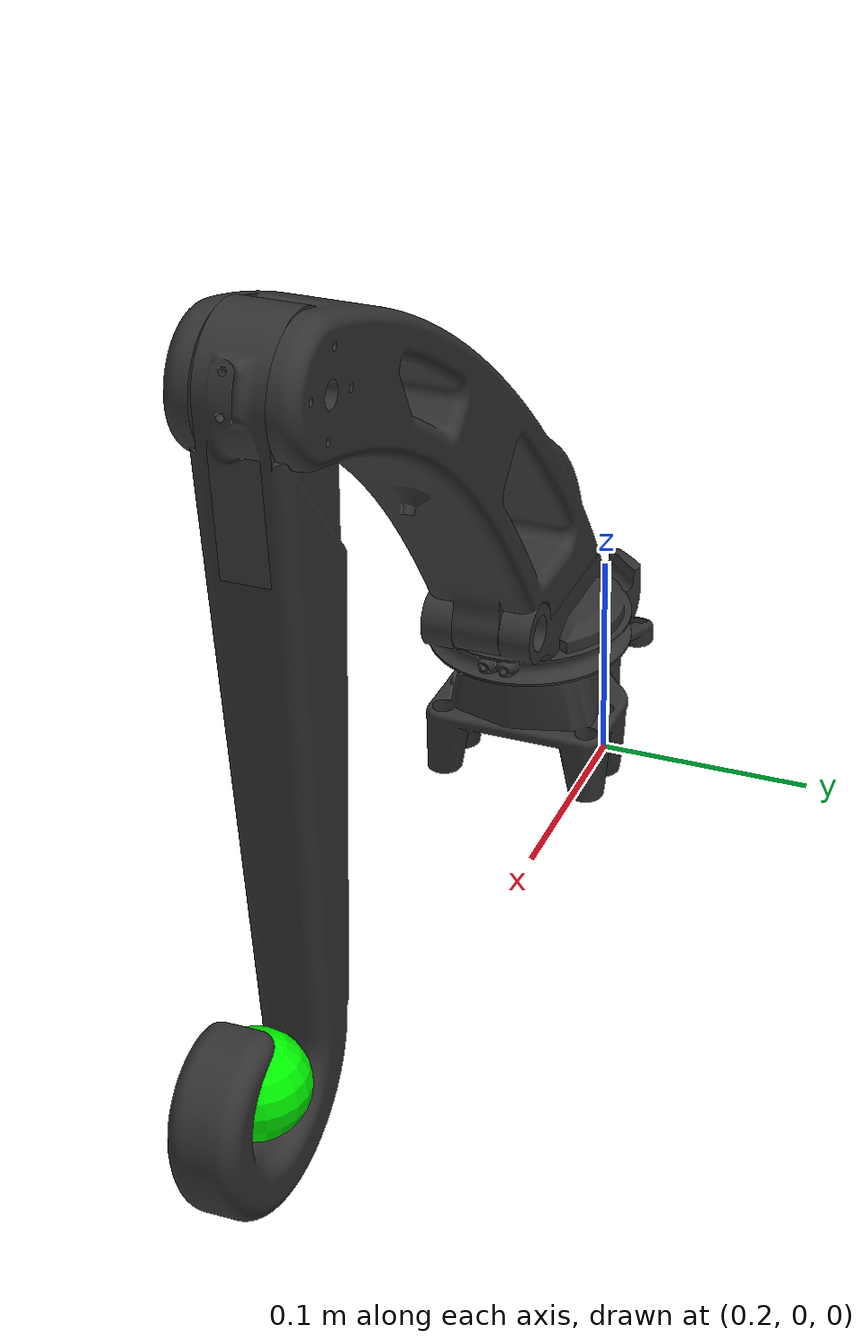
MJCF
<mujoco model="aliengo_description">
    <compiler angle="radian" meshdir="./assets/" autolimits="true"/>
    <option cone="elliptic" impratio="100" />
    <size njmax="500" nconmax="100" />
    <option gravity='0 0 -9.806' timestep='0.002'/>

    <default>
        <geom contype="1" conaffinity="1" friction="0.8 0.02 0.01" rgba="0.5 0.6 0.7 1" margin="0.001" group="0"/>

        <light castshadow="false" diffuse="1 1 1"/>
        <motor ctrlrange="-44.4 44.4" ctrllimited="true"/>
        <camera fovy="60"/>
        <joint damping="3" armature="0.01" frictionloss="0.2" />

    </default>
    <!-- No rename the assests these are the mesh files-->
    <asset>
        <mesh name="follower/trunk" file="trunk.stl" />
        <mesh name="follower/hip" file="hip.stl" />
        <mesh name="follower/thigh_mirror" file="thigh_mirror.stl" />
        <mesh name="follower/calf" file="calf.stl" />
        <mesh name="follower/thigh" file="thigh.stl" />
        <mesh name="follower/base_arm_link" file="base_arm_link.stl" />
        <mesh name="follower/arm_link_1" file="arm_link_1.stl" />
        <mesh name="follower/arm_link_2" file="arm_link_2.stl" />
        <mesh name="follower/arm_link_3" file="arm_link_3.stl" />
        <mesh name="leader/trunk" file="trunk.stl" />
        <mesh name="leader/hip" file="hip.stl" />
        <mesh name="leader/thigh_mirror" file="thigh_mirror.stl" />
        <mesh name="leader/calf" file="calf.stl" />
        <mesh name="leader/thigh" file="thigh.stl" />
        <mesh name="leader/base_arm_link" file="base_arm_link.stl" />
        <mesh name="leader/arm_link_1" file="arm_link_1.stl" />
        <mesh name="leader/arm_link_2" file="arm_link_2.stl" />
        <mesh name="leader/arm_link_3" file="arm_link_3.stl" />
    </asset>

    <visual>
      <headlight diffuse="0.6 0.6 0.6" ambient="0.3 0.3 0.3" specular="0 0 0"/>
      <rgba haze="0.15 0.25 0.35 1"/>
      <global azimuth="-130" elevation="-20"/>
    </visual>

    <asset>
      <texture type="skybox" builtin="gradient" rgb1="0.3 0.5 0.7" rgb2="0 0 0" width="512" height="3072"/>
      <texture type="2d" name="groundplane" builtin="checker" mark="edge" rgb1="0.2 0.3 0.4" rgb2="0.1 0.2 0.3"
        markrgb="0.8 0.8 0.8" width="300" height="300"/>
      <material name="groundplane" texture="groundplane" texuniform="true" texrepeat="5 5" reflectance="0.2"/>
    </asset>
    <!-- pos is used to set the position-->
    <worldbody>
        <light directional="true" diffuse=".8 .8 .8" pos="0 0 10" dir="0 0 -10"/>
        <camera pos="1.794 0.068 0.397" mode="trackcom" xyaxes="0.008 1.000 0.000 -0.155 0.001 0.988"/>
        <camera name="follower/track" mode="trackcom" pos="0 -1.3 1.6" xyaxes="1 0 0 0 0.707 0.707"/>

            <body name="arm_base" pos="0.3 0 0.056" >

                    <inertial pos="0. 0.0 0.0" quat="0 0 0 1" mass="0.02" diaginertia="0.000004622 0.000004495 0.000002079" />
                    <geom quat="-1 0 0 0" type="mesh" contype="0" conaffinity="0" group="2" rgba="0.2 0.2 0.2 1" mesh="follower/base_arm_link" />
                    <geom size="0.0046 0.00209" pos="0 0 0" quat="0.707107 0.707107 0 0" type="capsule" rgba="0.2 0.2 0.2 0" />

                    <body name="arm_link_0" pos="0 0 0.06" quat="0 0 0 1">
                        <inertial pos="0. 0 0." quat="0 0 0 1" mass="0.05" diaginertia="0.000004622 0.000004495 0.000002079" />
                        <joint name="arm_link_1_joint" pos="0. 0 0." axis="0 0 1" limited="true" range="-1 1"  stiffness="300"
                        damping="15.8" />
                        <geom quat=" 0 0 0 1" type="mesh" contype="0" conaffinity="0" group="2" rgba="0.2 0.2 0.2 1" mesh="follower/arm_link_1" />

                        <body name="follower/arm_link_1" pos="-0.05 0 0.035 " quat="1 0. 0 0">
                            <inertial pos="0.0194 0.0 -0.125" quat="0 0 0 1" mass="0.05" diaginertia="0.00000457 0.000004831 0.000001409" />
                            <joint name="arm_link_2_joint" pos="0.01 0 0.0" axis="0 1 0" limited="true" range="-1 1" stiffness="300"
                            damping="89.9" />
                            <geom quat=" 0 0 0 1" type="mesh" contype="0" conaffinity="0" group="2" rgba="0.2 0.2 0.2 1" mesh="follower/arm_link_2" />
                            <geom size="0.04 0.0002 0.1" pos="0. 0 0" quat="0 0 0 1" type="capsule" rgba="0.2 0.2 0.2 0" />

                            <body name="arm_link_2" pos="-0.18 0.0 0.185" quat="1 0. 0 0">
                                <inertial pos="0.0388 0.0 -0.25" quat="1 0 0 0" mass="0.0220" diaginertia="0.000011088 0.00001072 0.000011255" />

                                <joint name="arm_link_3_joint" pos="0. 0 0" axis="0 1 0" limited="false" range="-1 0.2" stiffness="300"
                                damping="92.34" />
                                <geom quat=" 0 0 0 1 " name="apply_force_frame" type="mesh" contype="0" conaffinity="0" group="2" rgba="0.2 0.2 0.2 1" mesh="follower/arm_link_3" />
                                <geom size="0.03 0.03 0.15" pos="0.02 0 -0.15" quat="0 0 1 1" type="box" rgba="0 0 0 0" />

                                <site name="eef_follower" pos="-0.04 0 -0.25" size="0.01" quat="-1 0 0 0"/>
                                <body name="eef" pos="-0.04 0 -0.25" quat="1 0 0 0">

                                    <inertial pos="0 0 0" mass="60" diaginertia="0.00001 0.00001 0.00001"/>
                                    <joint name="eef_joint"  damping="0.1"/>
                                    <geom name="eef_geom" type="sphere" size="0.02" rgba="0 1 0 1" contype="0" conaffinity="0"/>
                                    <site name="eef_contact" pos="0 0 0" size="0.01" rgba="1 0 0 1"/>
                                </body>
                            </body>
                        </body>
                    </body>
            </body>

        <!-- add a box mounting point -->

    </worldbody>

    <actuator>

        <!-- second robot-->

    </actuator>

    <sensor>

    </sensor>

    <!--this defines the initial position of the robot-->
</mujoco>
